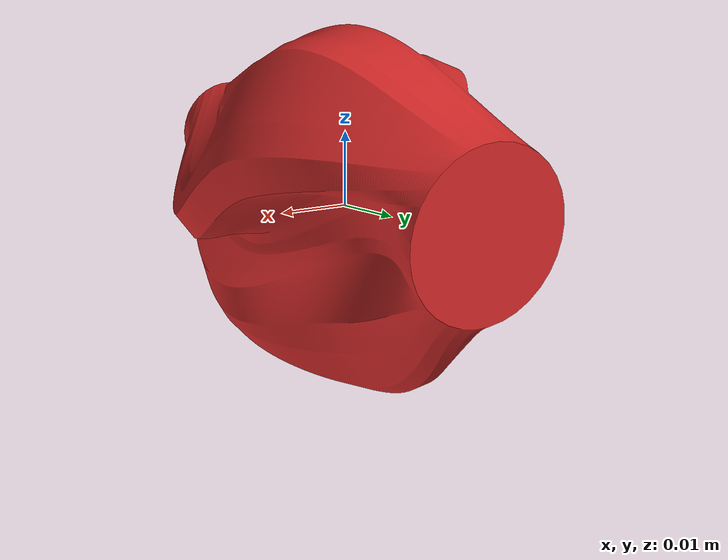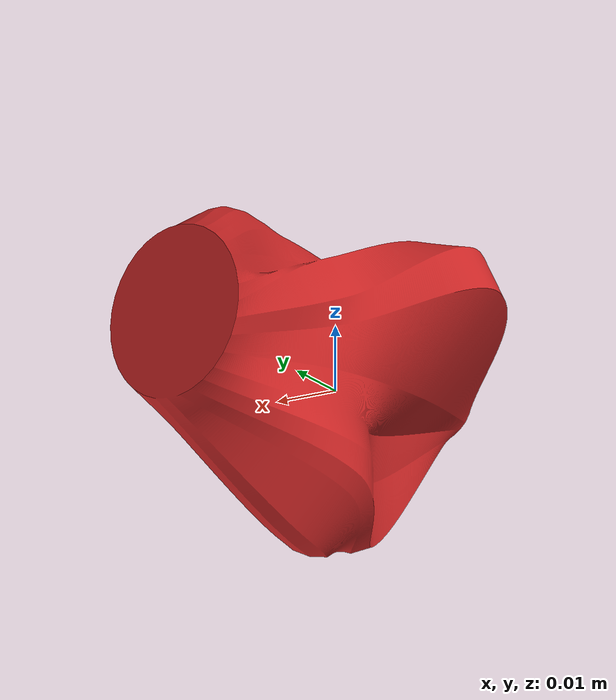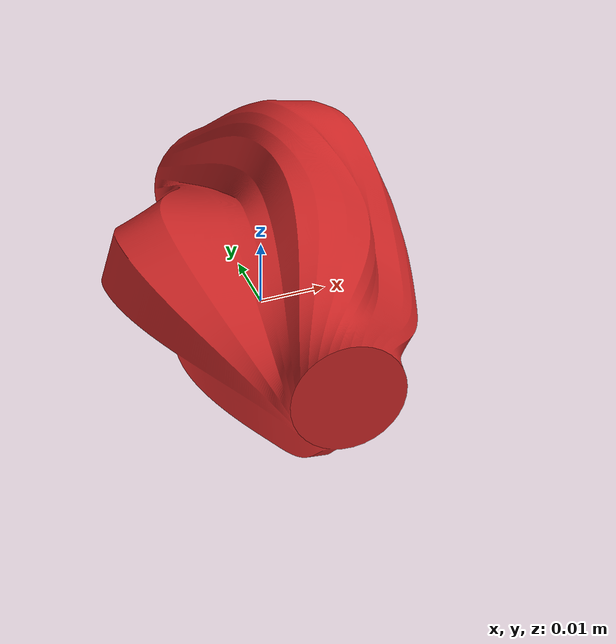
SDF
<?xml version="1.0" ?>
<sdf version="1.5">
  <model name="vase">
    <static>true</static>
    <link name="vase_link">
      <self_collide>true</self_collide>

      <collision name="collision">
        <geometry>
          <mesh>
            <uri>model://mahler_obj/vase/meshes/vase.stl</uri>
            <scale>0.6 0.6 0.6</scale>
          </mesh>
        </geometry>
        <surface>
          <friction>
            <ode>
              <mu>0.6</mu>
              <mu2>0.6</mu2>
            </ode>
          </friction>
        </surface>
      </collision>

      <visual name="visual">
        <geometry>
          <mesh>
            <uri>model://mahler_obj/vase/meshes/vase.stl</uri>
            <scale>0.6 0.6 0.6</scale>
          </mesh>
        </geometry>
        <material>
          <script>
            <uri>file://media/materials/scripts/gazebo.material</uri>
            <name>Gazebo/Red</name>
          </script>
        </material>
      </visual>
    </link>

  </model>
</sdf>
